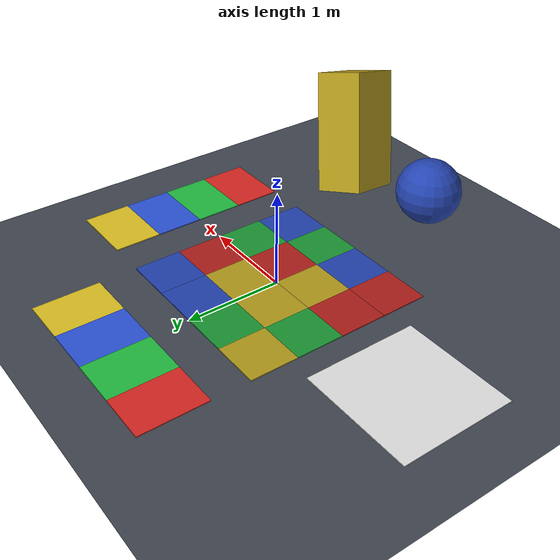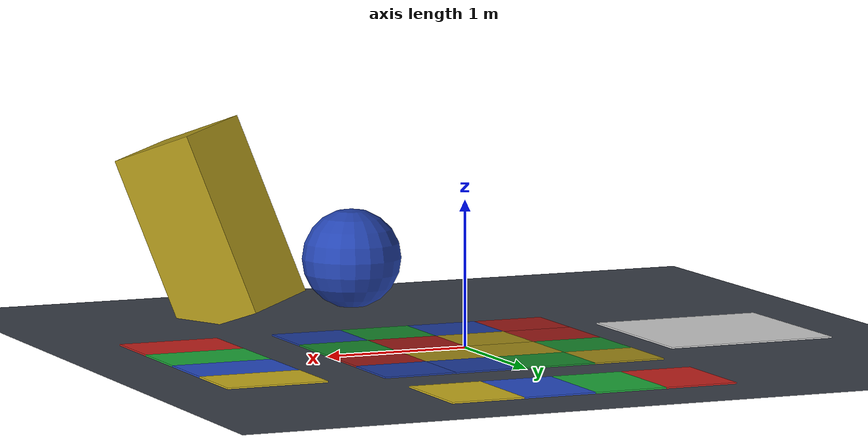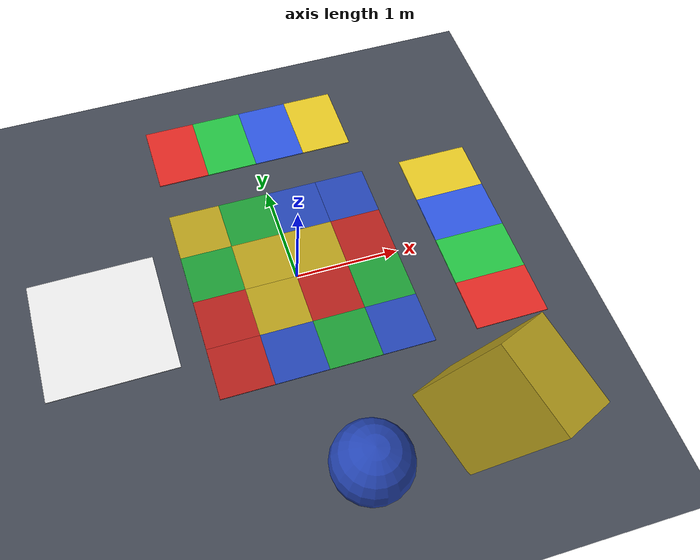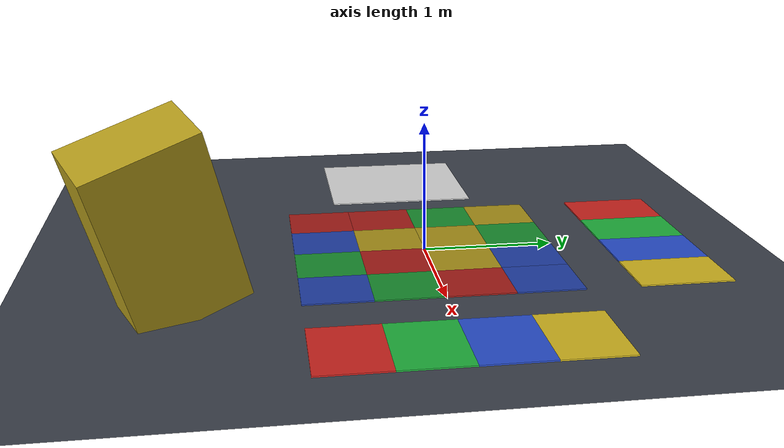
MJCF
<mujoco model="parity_texture">
  <compiler angle="degree" autolimits="true"/>

  <visual>
    <headlight ambient="0.35 0.35 0.35" diffuse="0.45 0.45 0.45" specular="0.1 0.1 0.1"/>
    <quality shadowsize="2048"/>
    <map znear="0.02" zfar="40"/>
  </visual>

  <asset>
    <texture name="grid" type="2d" builtin="checker" width="512" height="512"
             rgb1="0.20 0.22 0.26" rgb2="0.32 0.35 0.40"/>
    <material name="grid" texture="grid" texrepeat="1 1" texuniform="true"/>

    <texture name="cell" type="2d" builtin="checker" width="256" height="256"
             rgb1="0.60 0.60 0.60" rgb2="1.00 1.00 1.00"/>
    <material name="c0" texture="cell" texrepeat="2 2" rgba="0.88 0.16 0.14 1" specular="0.1"/>
    <material name="c1" texture="cell" texrepeat="2 2" rgba="0.14 0.76 0.26 1" specular="0.1"/>
    <material name="c2" texture="cell" texrepeat="2 2" rgba="0.18 0.34 0.88 1" specular="0.1"/>
    <material name="c3" texture="cell" texrepeat="2 2" rgba="0.90 0.78 0.14 1" specular="0.1"/>

    <material name="s0" rgba="0.88 0.16 0.14 1" specular="0.05"/>
    <material name="s1" rgba="0.14 0.76 0.26 1" specular="0.05"/>
    <material name="s2" rgba="0.18 0.34 0.88 1" specular="0.05"/>
    <material name="s3" rgba="0.90 0.78 0.14 1" specular="0.05"/>

    <texture name="speckle" type="2d" builtin="flat" width="128" height="128"
             rgb1="0.92 0.92 0.92" mark="random" random="0.22" markrgb="0.08 0.08 0.10"/>
    <material name="speckle" texture="speckle" texrepeat="1 1" specular="0.05"/>
  </asset>

  <worldbody>
    <light name="flat_light" type="directional" pos="0 0 6" dir="0 0 -1"
           diffuse="0.55 0.55 0.55" specular="0.05 0.05 0.05" castshadow="false"/>

    <geom name="floor" type="plane" size="0 0 0.05" material="grid"/>

    <geom name="cell_r0c0" type="box" pos="-0.75 -0.75 0.005" size="0.25 0.25 0.005" material="c0"/>
    <geom name="cell_r0c1" type="box" pos="-0.25 -0.75 0.005" size="0.25 0.25 0.005" material="c2"/>
    <geom name="cell_r0c2" type="box" pos=" 0.25 -0.75 0.005" size="0.25 0.25 0.005" material="c1"/>
    <geom name="cell_r0c3" type="box" pos=" 0.75 -0.75 0.005" size="0.25 0.25 0.005" material="c2"/>

    <geom name="cell_r1c0" type="box" pos="-0.75 -0.25 0.005" size="0.25 0.25 0.005" material="c0"/>
    <geom name="cell_r1c1" type="box" pos="-0.25 -0.25 0.005" size="0.25 0.25 0.005" material="c3"/>
    <geom name="cell_r1c2" type="box" pos=" 0.25 -0.25 0.005" size="0.25 0.25 0.005" material="c0"/>
    <geom name="cell_r1c3" type="box" pos=" 0.75 -0.25 0.005" size="0.25 0.25 0.005" material="c1"/>

    <geom name="cell_r2c0" type="box" pos="-0.75  0.25 0.005" size="0.25 0.25 0.005" material="c1"/>
    <geom name="cell_r2c1" type="box" pos="-0.25  0.25 0.005" size="0.25 0.25 0.005" material="c3"/>
    <geom name="cell_r2c2" type="box" pos=" 0.25  0.25 0.005" size="0.25 0.25 0.005" material="c3"/>
    <geom name="cell_r2c3" type="box" pos=" 0.75  0.25 0.005" size="0.25 0.25 0.005" material="c0"/>

    <geom name="cell_r3c0" type="box" pos="-0.75  0.75 0.005" size="0.25 0.25 0.005" material="c3"/>
    <geom name="cell_r3c1" type="box" pos="-0.25  0.75 0.005" size="0.25 0.25 0.005" material="c1"/>
    <geom name="cell_r3c2" type="box" pos=" 0.25  0.75 0.005" size="0.25 0.25 0.005" material="c2"/>
    <geom name="cell_r3c3" type="box" pos=" 0.75  0.75 0.005" size="0.25 0.25 0.005" material="c2"/>

    <geom name="stripe_u0" type="box" pos="-0.75 1.75 0.005" size="0.25 0.35 0.005" material="s0"/>
    <geom name="stripe_u1" type="box" pos="-0.25 1.75 0.005" size="0.25 0.35 0.005" material="s1"/>
    <geom name="stripe_u2" type="box" pos=" 0.25 1.75 0.005" size="0.25 0.35 0.005" material="s2"/>
    <geom name="stripe_u3" type="box" pos=" 0.75 1.75 0.005" size="0.25 0.35 0.005" material="s3"/>

    <geom name="stripe_v0" type="box" pos="1.75 -0.75 0.005" size="0.35 0.25 0.005" material="s0"/>
    <geom name="stripe_v1" type="box" pos="1.75 -0.25 0.005" size="0.35 0.25 0.005" material="s1"/>
    <geom name="stripe_v2" type="box" pos="1.75  0.25 0.005" size="0.35 0.25 0.005" material="s2"/>
    <geom name="stripe_v3" type="box" pos="1.75  0.75 0.005" size="0.35 0.25 0.005" material="s3"/>

    <geom name="speckle_board" type="box" pos="-1.85 0 0.005" size="0.6 0.6 0.005"
          material="speckle"/>

    <geom name="tex_sphere" type="sphere" pos="0 -2.0 0.35" size="0.35" material="c2"/>
    <geom name="tex_box" type="box" pos="1.1 -1.9 0.65" size="0.25 0.40 0.65"
          euler="12 18 20" material="c3"/>

    <camera name="t0_top" pos="0.35 0.15 4.2" xyaxes="1 0 0 0 1 0"/>
    <camera name="t1_oblique" pos="2.6 -2.9 2.2" xyaxes="0.74 0.68 0 -0.34 0.37 0.87"/>
  </worldbody>
</mujoco>
